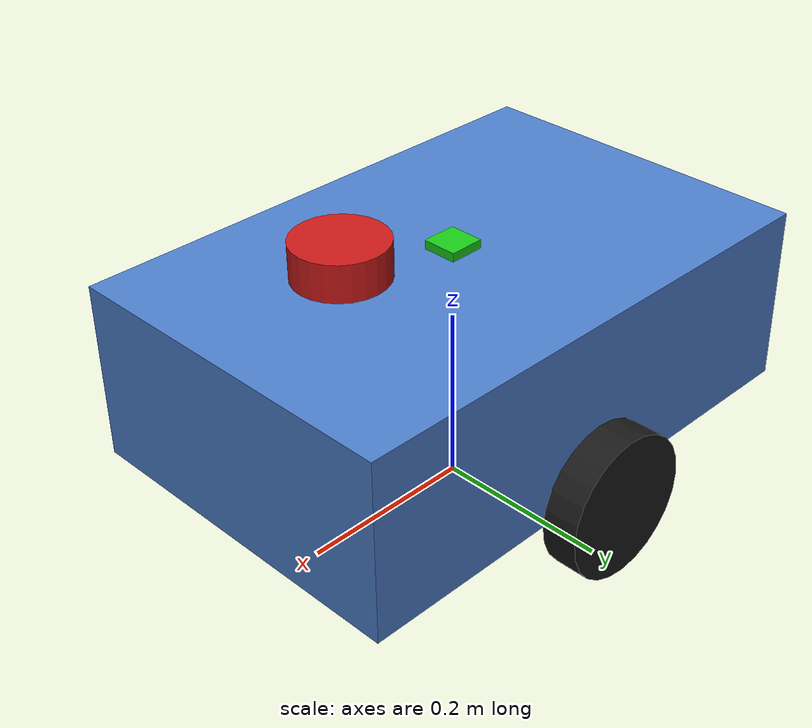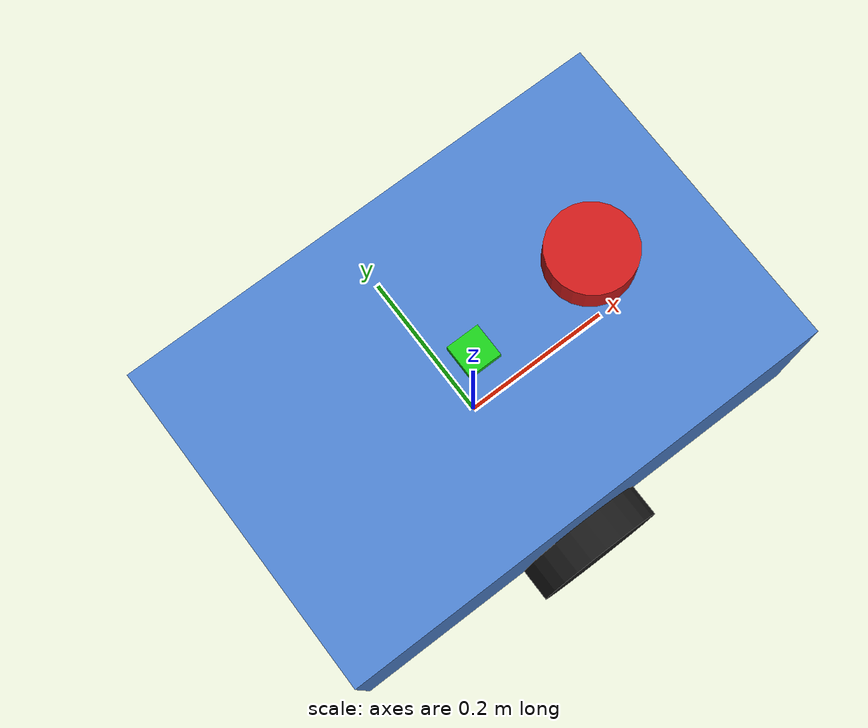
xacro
<?xml version="1.0"?>

<robot xmlns:xacro="http://www.ros.org/wiki/xacro"
       name="icp_ekf_amr">

    <!-- Parameters -->

    <xacro:property name="base_length" value="0.60"/>
    <xacro:property name="base_width"  value="0.40"/>
    <xacro:property name="base_height" value="0.20"/>

    <xacro:property name="wheel_radius" value="0.08"/>
    <xacro:property name="wheel_width"  value="0.04"/>

    <!-- BASE FOOTPRINT -->

    <link name="base_footprint"/>

    <joint name="base_footprint_joint" type="fixed">
        <parent link="base_footprint"/>
        <child link="base_link"/>

        <!-- wheel radius 만큼 위쪽 -->
        <origin xyz="0 0 0.08"
                rpy="0 0 0"/>
    </joint>

    <!-- BASE LINK -->

    <link name="base_link">

        <visual>
            <origin xyz="0 0 0.10"
                    rpy="0 0 0"/>

            <geometry>
                <box size="${base_length}
                           ${base_width}
                           ${base_height}"/>
            </geometry>

            <material name="body">
                <color rgba="0.3 0.5 0.8 1.0"/>
            </material>
        </visual>

        <collision>
            <origin xyz="0 0 0.10"
                    rpy="0 0 0"/>

            <geometry>
                <box size="${base_length}
                           ${base_width}
                           ${base_height}"/>
            </geometry>
        </collision>

        <inertial>
            <origin xyz="0 0 0.10"
                    rpy="0 0 0"/>

            <mass value="15.0"/>

            <inertia
                ixx="0.25"
                ixy="0.0"
                ixz="0.0"
                iyy="0.50"
                iyz="0.0"
                izz="0.60"/>
        </inertial>

    </link>

    <!-- LEFT WHEEL -->

    <link name="left_wheel_link">

        <visual>
            <geometry>
                <cylinder
                    radius="${wheel_radius}"
                    length="${wheel_width}"/>
            </geometry>

            <material name="wheel">
                <color rgba="0.1 0.1 0.1 1.0"/>
            </material>
        </visual>

        <collision>
            <geometry>
                <cylinder
                    radius="${wheel_radius}"
                    length="${wheel_width}"/>
            </geometry>
        </collision>

        <inertial>
            <mass value="1.0"/>

            <inertia
                ixx="0.003"
                ixy="0.0"
                ixz="0.0"
                iyy="0.003"
                iyz="0.0"
                izz="0.003"/>
        </inertial>

    </link>

    <joint name="left_wheel_joint"
           type="continuous">

        <parent link="base_link"/>
        <child link="left_wheel_link"/>

        <origin xyz="0 0.22 0"
                rpy="1.5708 0 0"/>

        <axis xyz="0 0 -1"/>

    </joint>

    <gazebo reference="left_wheel_link">
    <mu1>1.0</mu1>
    <mu2>1.0</mu2>
    </gazebo>

    <!-- RIGHT WHEEL -->

    <link name="right_wheel_link">

        <visual>
            <geometry>
                <cylinder
                    radius="${wheel_radius}"
                    length="${wheel_width}"/>
            </geometry>

            <material name="wheel"/>
        </visual>

        <collision>
            <geometry>
                <cylinder
                    radius="${wheel_radius}"
                    length="${wheel_width}"/>
            </geometry>
        </collision>

        <inertial>
            <mass value="1.0"/>

            <inertia
                ixx="0.003"
                ixy="0.0"
                ixz="0.0"
                iyy="0.003"
                iyz="0.0"
                izz="0.003"/>
        </inertial>

    </link>

    <joint name="right_wheel_joint"
           type="continuous">

        <parent link="base_link"/>
        <child link="right_wheel_link"/>

        <origin xyz="0 -0.22 0"
                rpy="1.5708 0 0"/>

        <axis xyz="0 0 -1"/>

    </joint>

    <gazebo reference="right_wheel_link">
    <mu1>1.0</mu1>
    <mu2>1.0</mu2>
    </gazebo>

    <!-- LASER -->

    <link name="laser_link">

        <visual>
            <geometry>
                <cylinder
                    radius="0.05"
                    length="0.04"/>
            </geometry>

            <material name="laser">
                <color rgba="0.8 0.1 0.1 1.0"/>
            </material>
        </visual>

    </link>

    <joint name="laser_joint"
           type="fixed">

        <parent link="base_link"/>
        <child link="laser_link"/>

        <origin xyz="0.15 0 0.25"
                rpy="0 0 0"/>

    </joint>

    <!-- GAZEBO 2D LIDAR -->

    <gazebo reference="laser_link">

        <sensor name="gpu_lidar" type="gpu_lidar">

            <topic>scan</topic>
            <gz_frame_id>laser_link</gz_frame_id>
            <update_rate>10</update_rate>
            <always_on>true</always_on>
            <visualize>true</visualize>

            <lidar>
                <scan>
                    <horizontal>
                        <samples>360</samples>
                        <resolution>1</resolution>
                        <min_angle>-3.14159</min_angle>
                        <max_angle>3.14159</max_angle>
                    </horizontal>
                </scan>

                <range>
                    <min>0.10</min>
                    <max>10.0</max>
                    <resolution>0.01</resolution>
                </range>
            </lidar>
        </sensor>
    </gazebo>

    <!-- IMU -->

    <link name="imu_link">

        <visual>
            <geometry>
                <box size="0.04 0.04 0.02"/>
            </geometry>

            <material name="imu">
                <color rgba="0.1 0.8 0.1 1.0"/>
            </material>
        </visual>

    </link>

    <joint name="imu_joint"
           type="fixed">

        <parent link="base_link"/>
        <child link="imu_link"/>

        <origin xyz="0 0 0.20"
                rpy="0 0 0"/>

    </joint>

    <gazebo reference="imu_link">
        <sensor name="imu_sensor" type="imu">
            <topic>imu</topic>
            <gz_frame_id>imu_link</gz_frame_id>
            <update_rate>50</update_rate>
            <always_on>true</always_on>
            <visualize>false</visualize>
        </sensor>
    </gazebo>

    <!-- FRONT CASTER -->

    <link name="front_caster_link">

    <visual>
        <geometry>
        <sphere radius="0.04"/>
        </geometry>

        <material name="caster">
        <color rgba="0.2 0.2 0.2 1.0"/>
        </material>
    </visual>

    <collision>
        <geometry>
        <sphere radius="0.04"/>
        </geometry>
    </collision>

    <inertial>
        <mass value="0.2"/>

        <inertia
        ixx="0.0001"
        ixy="0.0"
        ixz="0.0"
        iyy="0.0001"
        iyz="0.0"
        izz="0.0001"/>
    </inertial>

    </link>

    <joint name="front_caster_joint"
        type="fixed">

    <parent link="base_link"/>
    <child link="front_caster_link"/>

    <origin xyz="0.22 0 -0.04"
            rpy="0 0 0"/>

    </joint>

    <gazebo reference="front_caster_link">
    <mu1>0.01</mu1>
    <mu2>0.01</mu2>
    </gazebo>

    <!-- REAR CASTER -->

    <link name="rear_caster_link">

    <visual>
        <geometry>
        <sphere radius="0.04"/>
        </geometry>

        <material name="caster"/>
    </visual>

    <collision>
        <geometry>
        <sphere radius="0.04"/>
        </geometry>
    </collision>

    <inertial>
        <mass value="0.2"/>

        <inertia
        ixx="0.0001"
        ixy="0.0"
        ixz="0.0"
        iyy="0.0001"
        iyz="0.0"
        izz="0.0001"/>
    </inertial>

    </link>

    <joint name="rear_caster_joint"
        type="fixed">

    <parent link="base_link"/>
    <child link="rear_caster_link"/>

    <origin xyz="-0.22 0 -0.04"
            rpy="0 0 0"/>

    </joint>

    <gazebo reference="rear_caster_link">
    <mu1>0.01</mu1>
    <mu2>0.01</mu2>
    </gazebo>

    <!-- DIFFERENTIAL DRIVE -->

    <gazebo>
        <plugin
            filename="ignition-gazebo-diff-drive-system"
            name="ignition::gazebo::systems::DiffDrive">

            <left_joint>left_wheel_joint</left_joint>
            <right_joint>right_wheel_joint</right_joint>

            <wheel_separation>0.44</wheel_separation>
            <wheel_radius>0.08</wheel_radius>

            <topic>cmd_vel</topic>

            <odom_topic>/model/icp_ekf_amr/odometry</odom_topic>

            <frame_id>odom</frame_id>

            <child_frame_id>base_footprint</child_frame_id>

            <tf_topic>/model/icp_ekf_amr/tf</tf_topic>

            <odom_publish_frequency>50</odom_publish_frequency>

        </plugin>
    </gazebo>

    <gazebo>
        <plugin
            filename="ignition-gazebo-joint-state-publisher-system"
            name="ignition::gazebo::systems::JointStatePublisher">

            <topic>/model/icp_ekf_amr/joint_state</topic>

            <joint_name>left_wheel_joint</joint_name>
            <joint_name>right_wheel_joint</joint_name>

            <update_rate>50</update_rate>

        </plugin>
    </gazebo>

</robot>
